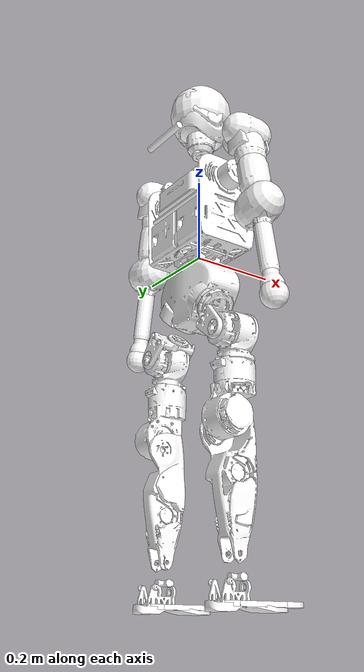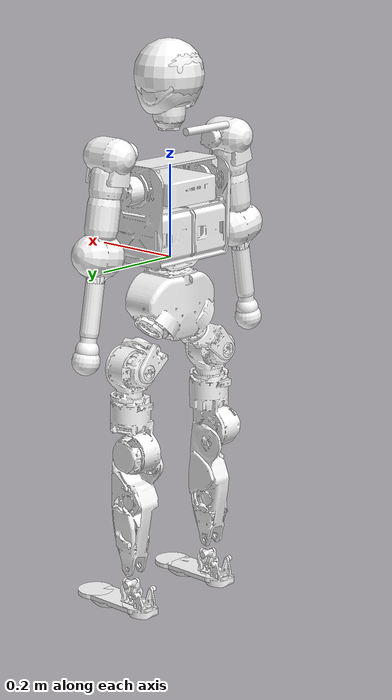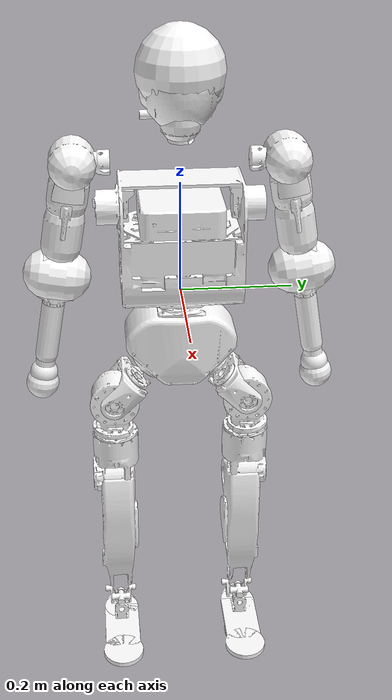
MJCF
<mujoco model="biped_s15">
  <compiler angle="radian" meshdir="../meshes/"/>

  <asset>
    <mesh name="torso" file="torso.STL"/>
    <mesh name="waist" file="waist.STL"/>
    <mesh name="l_leg_pitch" file="l_leg_pitch.STL"/>
    <mesh name="l_leg_roll" file="l_leg_roll.STL"/>
    <mesh name="l_leg_yaw" file="l_leg_yaw.STL"/>
    <mesh name="l_knee" file="l_knee.STL"/>
    <mesh name="l_foot_pitch" file="l_foot_pitch.STL"/>
    <mesh name="l_foot_roll" file="l_foot_roll.STL"/>
    <mesh name="r_leg_pitch" file="r_leg_pitch.STL"/>
    <mesh name="r_leg_roll" file="r_leg_roll.STL"/>
    <mesh name="r_leg_yaw" file="r_leg_yaw.STL"/>
    <mesh name="r_knee" file="r_knee.STL"/>
    <mesh name="r_foot_pitch" file="r_foot_pitch.STL"/>
    <mesh name="r_foot_roll" file="r_foot_roll.STL"/>
    <mesh name="l_arm_pitch" file="l_arm_pitch.STL"/>
    <mesh name="l_arm_roll" file="l_arm_roll.STL"/>
    <mesh name="l_arm_yaw" file="l_arm_yaw.STL"/>
    <mesh name="l_forearm" file="l_forearm.STL"/>
    <mesh name="r_arm_pitch" file="r_arm_pitch.STL"/>
    <mesh name="r_arm_roll" file="r_arm_roll.STL"/>
    <mesh name="r_arm_yaw" file="r_arm_yaw.STL"/>
    <mesh name="r_forearm" file="r_forearm.STL"/>
    <mesh name="head_yaw" file="head_yaw.STL"/>
    <mesh name="head_pitch" file="head_pitch.STL"/>
  </asset>

  <worldbody>
    <body name="base_link">
      <inertial pos="-0.006 0 0.145" mass="8.73" diaginertia="0.104 0.084 0.05"/>
      <joint name="dummy_to_base_link" type="free" limited="false" actuatorfrclimited="false"/>
      <geom type="mesh" contype="0" conaffinity="0" group="1" density="0" rgba="1 1 1 1" mesh="waist"/>
      <geom size="0.008 0.0625" pos="-0.102 0 0.288" quat="0.707105 0.707108 0 0" type="cylinder" rgba="1 1 1 1"/>

      <body name="leg_l1_link" pos="0 0.124412 -0.221153">
          <inertial pos="-0.00063257 -0.0331968 0.0331968" quat="0.306976 0.638057 0.270546 0.652268" mass="0.625689" diaginertia="0.0019949 0.001909 0.00114913"/>
          <joint name="leg_l1_joint" pos="0 0 0" axis="0 0.707107 -0.707107" range="-3.228 2.44346" actuatorfrcrange="-180 180" damping="0.2" frictionloss="0.1"/>
          <geom type="mesh" contype="0" conaffinity="0" group="1" density="0" rgba="1 1 1 1" mesh="l_leg_pitch"/>
          <body name="leg_l2_link">
            <inertial pos="0.00998392 5.405e-05 -0.00920979" quat="0.998376 -0.00280518 0.0563977 0.00753194" mass="2.0316" diaginertia="0.00460461 0.00412288 0.00338322"/>
            <joint name="leg_l2_joint" pos="0 0 0" axis="1 0 0" range="-0.837758 2.40855" actuatorfrcrange="-100 100" damping="0.2" frictionloss="0.1"/>
            <geom type="mesh" contype="0" conaffinity="0" group="1" density="0" rgba="1 1 1 1" mesh="l_leg_roll"/>
            <body name="leg_l3_link">
              <inertial pos="-0.0136391 -0.0013371 -0.157704" quat="0.680483 0.0858738 0.104775 0.720132" mass="3.38847" diaginertia="0.0151815 0.0146713 0.0049277"/>
              <joint name="leg_l3_joint" pos="0 0 0" axis="0 0 1" range="-1.7453 1.7453" actuatorfrcrange="-100 100" damping="0.2" frictionloss="0.1"/>
              <geom type="mesh" contype="0" conaffinity="0" group="1" density="0" rgba="1 1 1 1" mesh="l_leg_yaw"/>
              <body name="leg_l4_link" pos="-0.03 0 -0.213">
                <inertial pos="0.022046 0.00442347 -0.114735" quat="0.834057 -0.0612911 0.0232855 0.547768" mass="2.61852" diaginertia="0.0123942 0.0119075 0.0029593"/>
                <joint name="leg_l4_joint" pos="0 0 0" axis="0 1 0" range="-0.0872665 2.53073" actuatorfrcrange="-180 180" damping="0.2" frictionloss="0.1"/>
                <geom type="mesh" contype="0" conaffinity="0" group="1" density="0" rgba="1 1 1 1" mesh="l_knee"/>
                <body name="leg_l5_link" pos="0.03 0 -0.276">
                  <inertial pos="-0.00317025 1.08e-06 -0.00652874" quat="0.698397 0.110643 0.110643 0.698397" mass="0.108543" diaginertia="2.278e-05 1.98845e-05 1.08355e-05"/>
                  <joint name="leg_l5_joint" pos="0 0 0" axis="0 1 0" range="-0.872665 0.523599" actuatorfrcrange="-36 36" damping="0.2" frictionloss="0.1"/>
                  <geom type="mesh" contype="0" conaffinity="0" group="1" density="0" rgba="1 1 1 1" mesh="l_foot_pitch"/>
                  <body name="leg_l6_link" pos="0 0 -0.018">
                    <inertial pos="0.0238891 0.00010137 -0.0169705" quat="-0.00314074 0.7384 -0.00332222 0.674348" mass="0.436108" diaginertia="0.00107223 0.000979832 0.000192516"/>
                    <joint name="leg_l6_joint" pos="0 0 0" axis="1 0 0" range="-0.261799 0.261799" actuatorfrcrange="-36 36" damping="0.2" frictionloss="0.1"/>
                    <geom type="mesh" contype="0" conaffinity="0" group="1" density="0" rgba="1 1 1 1" mesh="l_foot_roll"/>
                    <geom size="0.035 0.005" pos="-0.02 0 -0.03" type="cylinder" rgba="1 1 1 1"/>
                    <geom size="0.04 0.005" pos="0.11 0 -0.03" type="cylinder" rgba="1 1 1 1"/>
                    <geom size="0.06 0.035 0.005" pos="0.038 0 -0.03" type="box" rgba="1 1 1 1"/>
                  </body>
                </body>
              </body>
            </body>
          </body>
        </body>
        <body name="leg_r1_link" pos="0 -0.124412 -0.221153">
          <inertial pos="-0.00063257 0.0331968 0.0331968" quat="0.652268 0.270546 0.638057 0.306976" mass="0.625689" diaginertia="0.0019949 0.001909 0.00114913"/>
          <joint name="leg_r1_joint" pos="0 0 0" axis="0 -0.707107 -0.707107" range="-3.228 2.44346" actuatorfrcrange="-180 180" damping="0.2" frictionloss="0.1"/>
          <geom type="mesh" contype="0" conaffinity="0" group="1" density="0" rgba="1 1 1 1" mesh="r_leg_pitch"/>
          <body name="leg_r2_link">
            <inertial pos="0.00998392 -5.405e-05 -0.00920979" quat="0.998376 0.00280518 0.0563977 -0.00753194" mass="2.0316" diaginertia="0.00460461 0.00412288 0.00338322"/>
            <joint name="leg_r2_joint" pos="0 0 0" axis="1 0 0" range="-2.40855 0.837758" actuatorfrcrange="-100 100" damping="0.2" frictionloss="0.1"/>
            <geom type="mesh" contype="0" conaffinity="0" group="1" density="0" rgba="1 1 1 1" mesh="r_leg_roll"/>
            <body name="leg_r3_link">
              <inertial pos="-0.0136391 0.0013371 -0.157704" quat="0.720132 0.104775 0.0858738 0.680483" mass="3.38847" diaginertia="0.0151815 0.0146713 0.0049277"/>
              <joint name="leg_r3_joint" pos="0 0 0" axis="0 0 1" range="-1.7453 1.7453" actuatorfrcrange="-100 100" damping="0.2" frictionloss="0.1"/>
              <geom type="mesh" contype="0" conaffinity="0" group="1" density="0" rgba="1 1 1 1" mesh="r_leg_yaw"/>
              <body name="leg_r4_link" pos="-0.03 0 -0.213">
                <inertial pos="0.022046 -0.00442347 -0.114735" quat="0.547768 0.0232855 -0.0612911 0.834057" mass="2.61852" diaginertia="0.0123942 0.0119075 0.0029593"/>
                <joint name="leg_r4_joint" pos="0 0 0" axis="0 1 0" range="-0.0872665 2.53073" actuatorfrcrange="-180 180" damping="0.2" frictionloss="0.1"/>
                <geom type="mesh" contype="0" conaffinity="0" group="1" density="0" rgba="1 1 1 1" mesh="r_knee"/>
                <body name="leg_r5_link" pos="0.03 0 -0.276">
                  <inertial pos="-0.00317025 1.08e-06 -0.00652874" quat="0.698397 0.110643 0.110643 0.698397" mass="0.108543" diaginertia="2.278e-05 1.98845e-05 1.08355e-05"/>
                  <joint name="leg_r5_joint" pos="0 0 0" axis="0 1 0" range="-0.872665 0.523599" actuatorfrcrange="-36 36" damping="0.2" frictionloss="0.1"/>
                  <geom type="mesh" contype="0" conaffinity="0" group="1" density="0" rgba="1 1 1 1" mesh="r_foot_pitch"/>
                  <body name="leg_r6_link" pos="0 0 -0.018">
                    <inertial pos="0.0238891 -0.00010137 -0.0169705" quat="0.00314074 0.7384 0.00332222 0.674348" mass="0.436108" diaginertia="0.00107223 0.000979832 0.000192516"/>
                    <joint name="leg_r6_joint" pos="0 0 0" axis="1 0 0" range="-0.261799 0.261799" actuatorfrcrange="-36 36" damping="0.2" frictionloss="0.1"/>
                    <geom type="mesh" contype="0" conaffinity="0" group="1" density="0" rgba="1 1 1 1" mesh="r_foot_roll"/>
                    <geom size="0.035 0.005" pos="-0.02 0 -0.03" type="cylinder" rgba="1 1 1 1"/>
                    <geom size="0.04 0.005" pos="0.11 0 -0.03" type="cylinder" rgba="1 1 1 1"/>
                    <geom size="0.06 0.035 0.005" pos="0.038 0 -0.03" type="box" rgba="1 1 1 1"/>
                  </body>
                </body>
              </body>
            </body>
          </body>
        </body>
      <body name="waist_yaw_link">
        <site name="imu" pos="0 0 0" />
        <inertial pos="0.001 0 -0.122" quat="0.707107 0.707107 0 0" mass="4.853" diaginertia="0.023 0.017 0.015"/>
        <joint name="waist_yaw_joint" pos="0 0 0" axis="0 0 1" range="-2.61799 2.61799" actuatorfrcrange="-50 50"/>
        <geom type="mesh" contype="0" conaffinity="0" group="1" density="0" rgba="1 1 1 1" mesh="torso"/>
        <body name="zarm_l1_link" pos="0 0.181003 0.239926">
          <inertial pos="0.0185243 -0.00307832 -6.089e-05" quat="-0.0876185 0.702161 0.0796388 0.702105" mass="0.803289" diaginertia="0.000935653 0.000838935 0.000645033"/>
          <joint name="zarm_l1_joint" pos="0 0 0" axis="0 1 0" range="-3.14159 2.0944" actuatorfrcrange="-12 12" damping="0.2" frictionloss="0.1"/>
          <geom type="mesh" contype="0" conaffinity="0" group="1" density="0" rgba="1 1 1 1" mesh="l_arm_pitch"/>
          <geom size="0.04 0.02" quat="0.707105 0 0.707108 0" type="capsule" rgba="1 1 1 1"/>
          <body name="zarm_l2_link" quat="0.9962 0.0872 0 0">
            <inertial pos="0.00217668 0.0057468 -0.0325868" quat="0.614053 0.350627 0.350627 0.614053" mass="0.323607" diaginertia="0.0006811 0.000512452 0.000453988"/>
            <joint name="zarm_l2_joint" pos="0 0 0" axis="1 0 0" range="-0.52 3.316" actuatorfrcrange="-12 12" damping="0.2" frictionloss="0.1"/>
            <geom type="mesh" contype="0" conaffinity="0" group="1" density="0" rgba="1 1 1 1" mesh="l_arm_roll"/>
            <geom size="0.035 0.0175" pos="0 0 -0.0525" type="capsule" rgba="1 1 1 1"/>
            <body name="zarm_l3_link">
              <inertial pos="-6.747e-05 -0.0101641 -0.150418" quat="0.996844 -0.0793864 -0.000157022 0.000272857" mass="1.46579" diaginertia="0.0069655 0.00670029 0.00121989"/>
              <joint name="zarm_l3_joint" pos="0 0 0" axis="0 0 1" range="-1.5708 1.5708" actuatorfrcrange="-12 12" damping="0.2" frictionloss="0.1"/>
              <geom type="mesh" contype="0" conaffinity="0" group="1" density="0" rgba="1 1 1 1" mesh="l_arm_yaw"/>
              <geom size="0.035 0.025" pos="0 0 -0.125" type="capsule" rgba="1 1 1 1"/>
              <body name="zarm_l4_link" pos="0 0 -0.20533">
                <inertial pos="-0.00081309 -0.0133168 -0.0898556" quat="0.99985 0.0158968 -0.00302512 0.00615193" mass="0.42137" diaginertia="0.00336004 0.00316115 0.000491667"/>
                <joint name="zarm_l4_joint" pos="0 0 0" axis="0 1 0" range="-2.26893 0.08726" actuatorfrcrange="-12 12" damping="0.2" frictionloss="0.1"/>
                <geom type="mesh" contype="0" conaffinity="0" group="1" density="0" rgba="1 1 1 1" mesh="l_forearm"/>
                <geom size="0.045 0.015" quat="0.707388 0.706825 0 0" type="capsule" rgba="1 1 1 1"/>
                <geom size="0.02 0.06" pos="0 0 -0.1" type="capsule" rgba="1 1 1 1"/>
                <geom size="0.03" pos="0 0 -0.22" rgba="1 1 1 1"/>
              </body>
            </body>
          </body>
        </body>
        <body name="zarm_r1_link" pos="0 -0.181003 0.239926">
          <inertial pos="0.0185243 0.00307832 -6.089e-05" quat="0.0876185 0.702161 -0.0796388 0.702105" mass="0.803289" diaginertia="0.000935653 0.000838935 0.000645033"/>
          <joint name="zarm_r1_joint" pos="0 0 0" axis="0 1 0" range="-3.14159 2.0944" actuatorfrcrange="-12 12" damping="0.2" frictionloss="0.1"/>
          <geom type="mesh" contype="0" conaffinity="0" group="1" density="0" rgba="1 1 1 1" mesh="r_arm_pitch"/>
          <geom size="0.04 0.02" quat="0.707105 0 0.707108 0" type="capsule" rgba="1 1 1 1"/>
          <body name="zarm_r2_link" quat="0.9962 -0.0872 0 0">
            <inertial pos="0.00217668 -0.0057468 -0.0325868" quat="0.614053 0.350627 0.350627 0.614053" mass="0.323607" diaginertia="0.0006811 0.000512452 0.000453988"/>
            <joint name="zarm_r2_joint" pos="0 0 0" axis="1 0 0" range="-3.3161 0.52" actuatorfrcrange="-12 12" damping="0.2" frictionloss="0.1"/>
            <geom type="mesh" contype="0" conaffinity="0" group="1" density="0" rgba="1 1 1 1" mesh="r_arm_roll"/>
            <geom size="0.035 0.0175" pos="0 0 -0.0525" type="capsule" rgba="1 1 1 1"/>
            <body name="zarm_r3_link">
              <inertial pos="-6.747e-05 0.0101641 -0.150418" quat="0.996844 0.0793864 -0.000157022 -0.000272857" mass="1.46579" diaginertia="0.0069655 0.00670029 0.00121989"/>
              <joint name="zarm_r3_joint" pos="0 0 0" axis="0 0 1" range="-1.5708 1.5708" actuatorfrcrange="-12 12" damping="0.2" frictionloss="0.1"/>
              <geom type="mesh" contype="0" conaffinity="0" group="1" density="0" rgba="1 1 1 1" mesh="r_arm_yaw"/>
              <geom size="0.035 0.025" pos="0 0 -0.125" type="capsule" rgba="1 1 1 1"/>
              <body name="zarm_r4_link" pos="0 0 -0.20533">
                <inertial pos="-0.00081309 0.0133168 -0.0898556" quat="0.99985 -0.0158968 -0.00302512 -0.00615193" mass="0.42137" diaginertia="0.00336004 0.00316115 0.000491667"/>
                <joint name="zarm_r4_joint" pos="0 0 0" axis="0 1 0" range="-2.26893 0.08726" actuatorfrcrange="-12 12" damping="0.2" frictionloss="0.1"/>
                <geom type="mesh" contype="0" conaffinity="0" group="1" density="0" rgba="1 1 1 1" mesh="r_forearm"/>
                <geom size="0.045 0.015" quat="0.707388 0.706825 0 0" type="capsule" rgba="1 1 1 1"/>
                <geom size="0.02 0.06" pos="0 0 -0.1" type="capsule" rgba="1 1 1 1"/>
                <geom size="0.03" pos="0 0 -0.22" rgba="1 1 1 1"/>
              </body>
            </body>
          </body>
        </body>
        <body name="zhead_1_link" pos="0.004 0 0.35618">
          <inertial pos="-0.00081546 0.00754474 0.0168097" mass="1.03078" diaginertia="0.002156 0.00189151 0.00071659"/>
          <joint name="zhead_1_joint" pos="0 0 0" axis="0 0 1"/>
          <geom type="mesh" contype="0" conaffinity="0" group="1" density="0" rgba="1 1 1 1" mesh="head_yaw"/>
          <geom size="0.035 0.05" type="capsule" rgba="1 1 1 1"/>
          <body name="zhead_2_link">
            <inertial pos="0.014664 0.00044662 0.0574289" quat="0 0.707107 0 0.707107" mass="0.33655" diaginertia="0.00150717 0.00141557 0.00119625"/>
            <joint name="zhead_2_joint" pos="0 0 0" axis="0 1 0"/>
            <geom type="mesh" contype="0" conaffinity="0" group="1" density="0" rgba="1 1 1 1" mesh="head_pitch"/>
            <geom size="0.075" pos="0 0 0.035" rgba="1 1 1 1"/>
          </body>
        </body>
      </body>
    </body>
  </worldbody>
  <actuator>
    <motor gear="1" joint="leg_l1_joint" name="leg_l1_joint_motor" ctrllimited="true" ctrlrange="-500 500" />
    <motor gear="1" joint="leg_l2_joint" name="leg_l2_joint_motor" ctrllimited="true" ctrlrange="-500 500" />
    <motor gear="1" joint="leg_l3_joint" name="leg_l3_joint_motor" ctrllimited="true" ctrlrange="-500 500" />
    <motor gear="1" joint="leg_l4_joint" name="leg_l4_joint_motor" ctrllimited="true" ctrlrange="-500 500" />
    <motor gear="1" joint="leg_l5_joint" name="leg_l5_joint_motor" ctrllimited="true" ctrlrange="-500 500" />
    <motor gear="1" joint="leg_l6_joint" name="leg_l6_joint_motor" ctrllimited="true" ctrlrange="-500 500" />
    <motor gear="1" joint="leg_r1_joint" name="leg_r1_joint_motor" ctrllimited="true" ctrlrange="-500 500" />
    <motor gear="1" joint="leg_r2_joint" name="leg_r2_joint_motor" ctrllimited="true" ctrlrange="-500 500" />
    <motor gear="1" joint="leg_r3_joint" name="leg_r3_joint_motor" ctrllimited="true" ctrlrange="-500 500" />
    <motor gear="1" joint="leg_r4_joint" name="leg_r4_joint_motor" ctrllimited="true" ctrlrange="-500 500" />
    <motor gear="1" joint="leg_r5_joint" name="leg_r5_joint_motor" ctrllimited="true" ctrlrange="-500 500" />
    <motor gear="1" joint="leg_r6_joint" name="leg_r6_joint_motor" ctrllimited="true" ctrlrange="-500 500" />
    <motor gear="1" joint="waist_yaw_joint" name="waist_yaw_joint_motor" ctrllimited="true" ctrlrange="-500 500" />
    <motor gear="1" joint="zarm_l1_joint" name="zarm_l1_joint_motor" ctrllimited="true" ctrlrange="-500 500" />
    <motor gear="1" joint="zarm_l2_joint" name="zarm_l2_joint_motor" ctrllimited="true" ctrlrange="-500 500" />
    <motor gear="1" joint="zarm_l3_joint" name="zarm_l3_joint_motor" ctrllimited="true" ctrlrange="-500 500" />
    <motor gear="1" joint="zarm_l4_joint" name="zarm_l4_joint_motor" ctrllimited="true" ctrlrange="-500 500" />
    <motor gear="1" joint="zarm_r1_joint" name="zarm_r1_joint_motor" ctrllimited="true" ctrlrange="-500 500" />
    <motor gear="1" joint="zarm_r2_joint" name="zarm_r2_joint_motor" ctrllimited="true" ctrlrange="-500 500" />
    <motor gear="1" joint="zarm_r3_joint" name="zarm_r3_joint_motor" ctrllimited="true" ctrlrange="-500 500" />
    <motor gear="1" joint="zarm_r4_joint" name="zarm_r4_joint_motor" ctrllimited="true" ctrlrange="-500 500" />
    <motor gear="1" joint="zhead_1_joint" name="zhead_1_joint_motor" ctrllimited="true" ctrlrange="-500 500" />
    <motor gear="1" joint="zhead_2_joint" name="zhead_2_joint_motor" ctrllimited="true" ctrlrange="-500 500" />
  </actuator>
  <sensor>
    <accelerometer name="BodyAcc" site="imu" />
    <velocimeter name="BodyVel" site="imu" />
    <gyro name="BodyGyro" site="imu" />
    <framepos name="BodyPos" objtype="site" objname="imu" />
    <framequat name="BodyQuat" objtype="site" objname="imu" />
    <jointpos name="leg_l1_joint_pos" joint="leg_l1_joint" />
    <jointpos name="leg_l2_joint_pos" joint="leg_l2_joint" />
    <jointpos name="leg_l3_joint_pos" joint="leg_l3_joint" />
    <jointpos name="leg_l4_joint_pos" joint="leg_l4_joint" />
    <jointpos name="leg_l5_joint_pos" joint="leg_l5_joint" />
    <jointpos name="leg_l6_joint_pos" joint="leg_l6_joint" />
    <jointpos name="leg_r1_joint_pos" joint="leg_r1_joint" />
    <jointpos name="leg_r2_joint_pos" joint="leg_r2_joint" />
    <jointpos name="leg_r3_joint_pos" joint="leg_r3_joint" />
    <jointpos name="leg_r4_joint_pos" joint="leg_r4_joint" />
    <jointpos name="leg_r5_joint_pos" joint="leg_r5_joint" />
    <jointpos name="leg_r6_joint_pos" joint="leg_r6_joint" />
    <jointpos name="waist_yaw_joint_pos" joint="waist_yaw_joint" />
    <jointpos name="zarm_l1_joint_pos" joint="zarm_l1_joint" />
    <jointpos name="zarm_l2_joint_pos" joint="zarm_l2_joint" />
    <jointpos name="zarm_l3_joint_pos" joint="zarm_l3_joint" />
    <jointpos name="zarm_l4_joint_pos" joint="zarm_l4_joint" />
    <jointpos name="zarm_r1_joint_pos" joint="zarm_r1_joint" />
    <jointpos name="zarm_r2_joint_pos" joint="zarm_r2_joint" />
    <jointpos name="zarm_r3_joint_pos" joint="zarm_r3_joint" />
    <jointpos name="zarm_r4_joint_pos" joint="zarm_r4_joint" />
    <jointpos name="zhead_1_joint_pos" joint="zhead_1_joint" />
    <jointpos name="zhead_2_joint_pos" joint="zhead_2_joint" />
    <jointvel name="leg_l1_joint_vel" joint="leg_l1_joint" />
    <jointvel name="leg_l2_joint_vel" joint="leg_l2_joint" />
    <jointvel name="leg_l3_joint_vel" joint="leg_l3_joint" />
    <jointvel name="leg_l4_joint_vel" joint="leg_l4_joint" />
    <jointvel name="leg_l5_joint_vel" joint="leg_l5_joint" />
    <jointvel name="leg_l6_joint_vel" joint="leg_l6_joint" />
    <jointvel name="leg_r1_joint_vel" joint="leg_r1_joint" />
    <jointvel name="leg_r2_joint_vel" joint="leg_r2_joint" />
    <jointvel name="leg_r3_joint_vel" joint="leg_r3_joint" />
    <jointvel name="leg_r4_joint_vel" joint="leg_r4_joint" />
    <jointvel name="leg_r5_joint_vel" joint="leg_r5_joint" />
    <jointvel name="leg_r6_joint_vel" joint="leg_r6_joint" />
    <jointvel name="waist_yaw_joint_vel" joint="waist_yaw_joint" />
    <jointvel name="zarm_l1_joint_vel" joint="zarm_l1_joint" />
    <jointvel name="zarm_l2_joint_vel" joint="zarm_l2_joint" />
    <jointvel name="zarm_l3_joint_vel" joint="zarm_l3_joint" />
    <jointvel name="zarm_l4_joint_vel" joint="zarm_l4_joint" />
    <jointvel name="zarm_r1_joint_vel" joint="zarm_r1_joint" />
    <jointvel name="zarm_r2_joint_vel" joint="zarm_r2_joint" />
    <jointvel name="zarm_r3_joint_vel" joint="zarm_r3_joint" />
    <jointvel name="zarm_r4_joint_vel" joint="zarm_r4_joint" />
    <jointvel name="zhead_1_joint_vel" joint="zhead_1_joint" />
    <jointvel name="zhead_2_joint_vel" joint="zhead_2_joint" />
  </sensor>
</mujoco>
